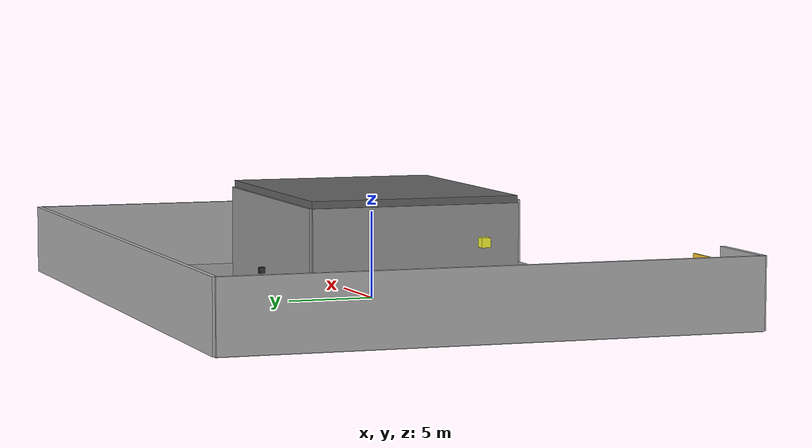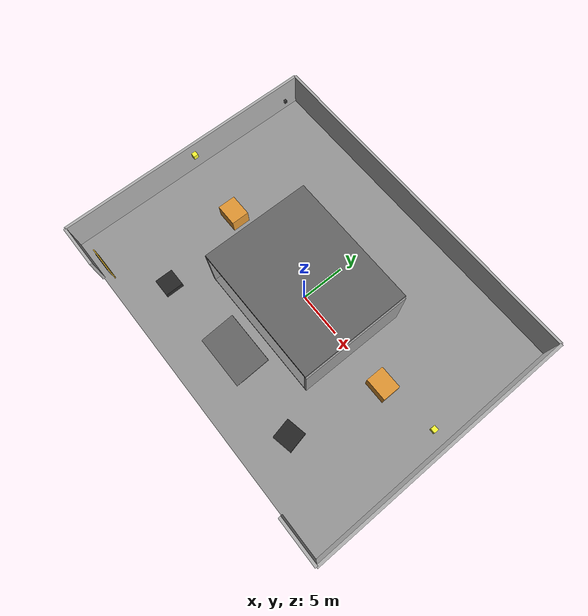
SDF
<?xml version="1.0" ?>
<sdf version="1.6">
  <model name="waste_collection_facility">
    <static>true</static>

    <!-- ================= 메인 외곽 벽과 넓은 바닥 ================= -->
    <link name="outer_ground">
      <!-- 넓은 외부 바닥 (전체 시설 바닥) -->
      <visual name="outer_floor">
        <pose>0 0 0 0 0 0</pose>
        <geometry>
          <box>
            <size>40 30 0.1</size>  <!-- 크게 확장: 40m × 30m -->
          </box>
        </geometry>
        <material>
          <ambient>0.5 0.5 0.5 1</ambient>
          <diffuse>0.6 0.6 0.6 1</diffuse>
        </material>
      </visual>

      <collision name="outer_floor_collision">
        <pose>0 0 0 0 0 0</pose>
        <geometry>
          <box>
            <size>40 30 0.1</size>
          </box>
        </geometry>
      </collision>

      <!-- 외곽 담장 (Perimeter Wall) -->
      <!-- 앞쪽 담장 (입구쪽, 중간에 뚫림) -->
      <visual name="front_wall_left">
        <pose>-17.5 -15 2 0 0 0</pose>
        <geometry>
          <box>
            <size>5 0.3 4</size>
          </box>
        </geometry>
        <material>
          <ambient>0.6 0.6 0.6 1</ambient>
          <diffuse>0.7 0.7 0.7 1</diffuse>
        </material>
      </visual>

      <visual name="front_wall_right">
        <pose>17.5 -15 2 0 0 0</pose>
        <geometry>
          <box>
            <size>5 0.3 4</size>
          </box>
        </geometry>
        <material>
          <ambient>0.6 0.6 0.6 1</ambient>
          <diffuse>0.7 0.7 0.7 1</diffuse>
        </material>
      </visual>

      <!-- 왼쪽 담장 -->
      <visual name="left_wall_outer">
        <pose>-20 0 2 0 0 0</pose>
        <geometry>
          <box>
            <size>0.3 30 4</size>
          </box>
        </geometry>
        <material>
          <ambient>0.6 0.6 0.6 1</ambient>
          <diffuse>0.7 0.7 0.7 1</diffuse>
        </material>
      </visual>

      <!-- 오른쪽 담장 -->
      <visual name="right_wall_outer">
        <pose>20 0 2 0 0 0</pose>
        <geometry>
          <box>
            <size>0.3 30 4</size>
          </box>
        </geometry>
        <material>
          <ambient>0.6 0.6 0.6 1</ambient>
          <diffuse>0.7 0.7 0.7 1</diffuse>
        </material>
      </visual>

      <!-- 뒷쪽 담장 -->
      <visual name="back_wall_outer">
        <pose>0 15 2 0 0 0</pose>
        <geometry>
          <box>
            <size>40 0.3 4</size>
          </box>
        </geometry>
        <material>
          <ambient>0.6 0.6 0.6 1</ambient>
          <diffuse>0.7 0.7 0.7 1</diffuse>
        </material>
      </visual>

    </link>

    <!-- ================= 기존 메인 창고 건물 (크기 유지) ================= -->
    <link name="main_building">
      <!-- 바닥 (기존보다 약간 높게) -->
      <visual name="floor">
        <pose>0 0 0.2 0 0 0</pose>
        <geometry>
          <box>
            <size>15 12 0.2</size>
          </box>
        </geometry>
        <material>
          <ambient>0.4 0.4 0.4 1</ambient>
          <diffuse>0.5 0.5 0.5 1</diffuse>
        </material>
      </visual>

      <collision name="floor_collision">
        <pose>0 0 0.2 0 0 0</pose>
        <geometry>
          <box>
            <size>15 12 0.2</size>
          </box>
        </geometry>
      </collision>

      <!-- 뒷벽 -->
      <visual name="back_wall">
        <pose>0 6 3 0 0 0</pose>
        <geometry>
          <box>
            <size>15 0.3 6</size>
          </box>
        </geometry>
        <material>
          <ambient>0.5 0.5 0.5 1</ambient>
          <diffuse>0.6 0.6 0.6 1</diffuse>
        </material>
      </visual>

      <collision name="back_wall_collision">
        <pose>0 6 3 0 0 0</pose>
        <geometry>
          <box>
            <size>15 0.3 6</size>
          </box>
        </geometry>
      </collision>

      <!-- 좌측 벽 -->
      <visual name="left_wall">
        <pose>-7.5 0 3 0 0 0</pose>
        <geometry>
          <box>
            <size>0.3 12 6</size>
          </box>
        </geometry>
        <material>
          <ambient>0.5 0.5 0.5 1</ambient>
          <diffuse>0.6 0.6 0.6 1</diffuse>
        </material>
      </visual>

      <collision name="left_wall_collision">
        <pose>-7.5 0 3 0 0 0</pose>
        <geometry>
          <box>
            <size>0.3 12 6</size>
          </box>
        </geometry>
      </collision>

      <!-- 우측 벽 -->
      <visual name="right_wall">
        <pose>7.5 0 3 0 0 0</pose>
        <geometry>
          <box>
            <size>0.3 12 6</size>
          </box>
        </geometry>
        <material>
          <ambient>0.5 0.5 0.5 1</ambient>
          <diffuse>0.6 0.6 0.6 1</diffuse>
        </material>
      </visual>

      <collision name="right_wall_collision">
        <pose>7.5 0 3 0 0 0</pose>
        <geometry>
          <box>
            <size>0.3 12 6</size>
          </box>
        </geometry>
      </collision>

      <!-- 지붕 -->
      <visual name="roof">
        <pose>0 0 6.2 0 0 0</pose>
        <geometry>
          <box>
            <size>15 12 0.4</size>
          </box>
        </geometry>
        <material>
          <ambient>0.3 0.3 0.3 1</ambient>
          <diffuse>0.4 0.4 0.4 1</diffuse>
        </material>
      </visual>

    </link>

    <!-- ================= 트럭 진입 램프 및 주차 공간 ================= -->
    <link name="ramp_area">
      <!-- 트럭 진입 램프 -->
      <visual name="ramp">
        <pose>0 -9 0.3 0.15 0 0</pose>
        <geometry>
          <box>
            <size>6 4 0.2</size>
          </box>
        </geometry>
        <material>
          <ambient>0.3 0.3 0.3 1</ambient>
          <diffuse>0.4 0.4 0.4 1</diffuse>
        </material>
      </visual>

      <collision name="ramp_collision">
        <pose>0 -9 0.3 0.15 0 0</pose>
        <geometry>
          <box>
            <size>6 4 0.2</size>
          </box>
        </geometry>
      </collision>

      <!-- 주차 공간 마킹 -->
      <visual name="parking_space_1">
        <pose>-8 -5 0.02 0 0 0</pose>
        <geometry>
          <box>
            <size>4 2.5 0.01</size>
          </box>
        </geometry>
        <material>
          <ambient>0.9 0.9 0.1 0.5</ambient>
        </material>
      </visual>

      <visual name="parking_space_2">
        <pose>8 -5 0.02 0 0 0</pose>
        <geometry>
          <box>
            <size>4 2.5 0.01</size>
          </box>
        </geometry>
        <material>
          <ambient>0.9 0.9 0.1 0.5</ambient>
        </material>
      </visual>

      <!-- 주차 공간 번호 -->
      <visual name="parking_number_1">
        <pose>-8 -5 0.03 0 0 0</pose>
        <geometry>
          <box>
            <size>0.8 0.1 0.01</size>
          </box>
        </geometry>
        <material>
          <ambient>1 1 1 1</ambient>
        </material>
      </visual>

      <visual name="parking_number_2">
        <pose>8 -5 0.03 0 0 0</pose>
        <geometry>
          <box>
            <size>0.8 0.1 0.01</size>
          </box>
        </geometry>
        <material>
          <ambient>1 1 1 1</ambient>
        </material>
      </visual>
    </link>

    <!-- ================= 대형 쓰레기 컨테이너들 ================= -->
    <link name="containers">
      <!-- 컨테이너 1 -->
      <visual name="container_1">
        <pose>-4 3 0.85 0 0 0</pose>
        <geometry>
          <box>
            <size>2 1.5 1.7</size>
          </box>
        </geometry>
        <material>
          <ambient>0.2 0.4 0.2 1</ambient>
          <diffuse>0.3 0.5 0.3 1</diffuse>
        </material>
      </visual>

      <collision name="container_1_collision">
        <pose>-4 3 0.85 0 0 0</pose>
        <geometry>
          <box>
            <size>2 1.5 1.7</size>
          </box>
        </geometry>
      </collision>

      <!-- 컨테이너 2 -->
      <visual name="container_2">
        <pose>0 3 0.85 0 0 0</pose>
        <geometry>
          <box>
            <size>2 1.5 1.7</size>
          </box>
        </geometry>
        <material>
          <ambient>0.2 0.4 0.2 1</ambient>
          <diffuse>0.3 0.5 0.3 1</diffuse>
        </material>
      </visual>

      <collision name="container_2_collision">
        <pose>0 3 0.85 0 0 0</pose>
        <geometry>
          <box>
            <size>2 1.5 1.7</size>
          </box>
        </geometry>
      </collision>

      <!-- 컨테이너 3 -->
      <visual name="container_3">
        <pose>4 3 0.85 0 0 0</pose>
        <geometry>
          <box>
            <size>2 1.5 1.7</size>
          </box>
        </geometry>
        <material>
          <ambient>0.2 0.4 0.2 1</ambient>
          <diffuse>0.3 0.5 0.3 1</diffuse>
        </material>
      </visual>

      <collision name="container_3_collision">
        <pose>4 3 0.85 0 0 0</pose>
        <geometry>
          <box>
            <size>2 1.5 1.7</size>
          </box>
        </geometry>
      </collision>

      <!-- 추가 컨테이너 (외부 공간에) -->
      <visual name="container_4">
        <pose>-12 0 0.85 0 0 0</pose>
        <geometry>
          <box>
            <size>2.5 2 1.8</size>
          </box>
        </geometry>
        <material>
          <ambient>0.8 0.5 0.1 1</ambient>
          <diffuse>0.9 0.6 0.2 1</diffuse>
        </material>
      </visual>

      <visual name="container_5">
        <pose>12 0 0.85 0 0 0</pose>
        <geometry>
          <box>
            <size>2.5 2 1.8</size>
          </box>
        </geometry>
        <material>
          <ambient>0.8 0.5 0.1 1</ambient>
          <diffuse>0.9 0.6 0.2 1</diffuse>
        </material>
      </visual>
    </link>

    <!-- ================= 쓰레기 더미들 ================= -->
    <link name="garbage_piles">
      <!-- 쓰레기 더미 1 -->
      <visual name="garbage_pile_1">
        <pose>-5 0 0.5 0 0 0</pose>
        <geometry>
          <box>
            <size>1.5 1.5 1.0</size>
          </box>
        </geometry>
        <material>
          <ambient>0.1 0.1 0.1 1</ambient>
          <diffuse>0.15 0.15 0.15 1</diffuse>
        </material>
      </visual>

      <collision name="garbage_pile_1_collision">
        <pose>-5 0 0.5 0 0 0</pose>
        <geometry>
          <box>
            <size>1.5 1.5 1.0</size>
          </box>
        </geometry>
      </collision>

      <!-- 쓰레기 더미 2 -->
      <visual name="garbage_pile_2">
        <pose>-3 -1 0.4 0 0 0.5</pose>
        <geometry>
          <box>
            <size>1.2 1.2 0.8</size>
          </box>
        </geometry>
        <material>
          <ambient>0.1 0.1 0.1 1</ambient>
          <diffuse>0.15 0.15 0.15 1</diffuse>
        </material>
      </visual>

      <!-- 쓰레기 더미 3 -->
      <visual name="garbage_pile_3">
        <pose>5 0 0.6 0 0 -0.3</pose>
        <geometry>
          <box>
            <size>1.8 1.8 1.2</size>
          </box>
        </geometry>
        <material>
          <ambient>0.1 0.1 0.1 1</ambient>
          <diffuse>0.15 0.15 0.15 1</diffuse>
        </material>
      </visual>

      <!-- 쓰레기 더미 4 (외부 공간에 추가) -->
      <visual name="garbage_pile_4">
        <pose>-10 -10 0.3 0 0 0</pose>
        <geometry>
          <box>
            <size>2.0 2.0 0.8</size>
          </box>
        </geometry>
        <material>
          <ambient>0.1 0.1 0.1 1</ambient>
          <diffuse>0.15 0.15 0.15 1</diffuse>
        </material>
      </visual>

      <!-- 쓰레기 더미 5 (외부 공간에 추가) -->
      <visual name="garbage_pile_5">
        <pose>10 -10 0.4 0 0 0.2</pose>
        <geometry>
          <box>
            <size>2.2 2.2 1.0</size>
          </box>
        </geometry>
        <material>
          <ambient>0.1 0.1 0.1 1</ambient>
          <diffuse>0.15 0.15 0.15 1</diffuse>
        </material>
      </visual>
    </link>

    <!-- ================= 사인보드 및 기타 ================= -->
    <link name="signs_and_fences">
      <!-- 사인보드 -->
      <visual name="sign_board">
        <pose>-15 -14 2.5 0 0 0</pose>
        <geometry>
          <box>
            <size>3 0.1 2</size>
          </box>
        </geometry>
        <material>
          <ambient>0.9 0.7 0.1 1</ambient>
          <diffuse>1 0.8 0.2 1</diffuse>
        </material>
      </visual>

      <!-- 사인 텍스트 -->
      <visual name="sign_text">
        <pose>-15 -14.1 2.5 0 0 0</pose>
        <geometry>
          <box>
            <size>2.4 0.05 1.2</size>
          </box>
        </geometry>
        <material>
          <ambient>0.1 0.1 0.1 1</ambient>
          <diffuse>0.1 0.1 0.1 1</diffuse>
        </material>
      </visual>

      <!-- 보안등 (Security Light) -->
      <visual name="security_light_1">
        <pose>-18 0 5 0 0 0</pose>
        <geometry>
          <box>
            <size>0.5 0.5 0.5</size>
          </box>
        </geometry>
        <material>
          <ambient>0.9 0.9 0.1 1</ambient>
          <diffuse>1 1 0.2 1</diffuse>
        </material>
      </visual>

      <visual name="security_light_2">
        <pose>18 0 5 0 0 0</pose>
        <geometry>
          <box>
            <size>0.5 0.5 0.5</size>
          </box>
        </geometry>
        <material>
          <ambient>0.9 0.9 0.1 1</ambient>
          <diffuse>1 1 0.2 1</diffuse>
        </material>
      </visual>

      <!-- CCTV 카메라 -->
      <visual name="cctv_1">
        <pose>-18 12 4 0 0 0</pose>
        <geometry>
          <box>
            <size>0.3 0.3 0.3</size>
          </box>
        </geometry>
        <material>
          <ambient>0.1 0.1 0.1 1</ambient>
          <diffuse>0.2 0.2 0.2 1</diffuse>
        </material>
      </visual>
    </link>

  </model>
</sdf>
